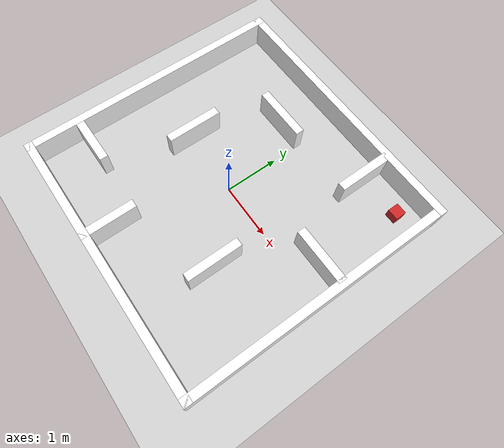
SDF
<?xml version="1.0"?>
<sdf version="1.6">
  <world name="default">

    <include>
      <uri>model://ground_plane</uri>
    </include>

    <include>
      <uri>model://sun</uri>
    </include>

    <scene>
      <shadows>false</shadows>
    </scene>

    <gui fullscreen='0'>
      <camera name='user_camera'>
        <pose frame=''>0.319654 -0.235002 9.29441 0 1.5138 0.009599</pose>
        <view_controller>orbit</view_controller>
        <projection_type>perspective</projection_type>
      </camera>
    </gui>

    <physics type="ode">
  <real_time_update_rate>500.0</real_time_update_rate>
  <max_step_size>0.002</max_step_size>
  <real_time_factor>0.7</real_time_factor>
  <ode>
    <solver>
      <type>quick</type>
      <iters>50</iters>
      <precon_iters>0</precon_iters>
      <sor>1.3</sor>
      <use_dynamic_moi_rescaling>0</use_dynamic_moi_rescaling>
    </solver>
    <constraints>
      <cfm>0.0001</cfm>
      <erp>0.2</erp>
      <contact_max_correcting_vel>100.0</contact_max_correcting_vel>
      <contact_surface_layer>0.001</contact_surface_layer>
    </constraints>
  </ode>
</physics>

    <model name="turtlebot3_dqn_world">
      <static>1</static>
      <include>
        <uri>model://turtlebot3_dqn_world</uri>
      </include>
    </model>

    <include>
      <pose>0 0 0 0 0 0</pose>
      <uri>model://turtlebot3_dqn_world/inner_walls</uri>
    </include>

   <plugin name="gazebo_ros_state" filename="libgazebo_ros_state.so">
      <ros>
        <namespace>/gazebo</namespace>
        <!-- No need to remap if you want the default topic name -->
      </ros>
      <update_rate>10.0</update_rate>
    </plugin>

    <model name='goal_cube'>
  <pose>2.0 2.0 0.1 0 0 0</pose>
  <link name='link'>
    <visual name='visual'>
      <geometry>
        <box><size>0.2 0.2 0.2</size></box>
      </geometry>
      <material>
        <script>
          <uri>file://media/materials/scripts/gazebo.material</uri>
          <name>Gazebo/Red</name>
        </script>
      </material>
    </visual>
  </link>
  <static>true</static> <!-- Makes the cube immovable -->
</model>
  </world>
</sdf>

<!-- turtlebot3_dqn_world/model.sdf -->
<sdf version='1.8'>
  <model name='turtlebot3_square'>
    <pose>0 0 0 0 0 0</pose>
    <static>true</static>

    <link name='Wall_1'>
      <pose>2.425 0 0.25 0 0 1.5708</pose>
      <collision name='Wall_1_Collision'>
        <geometry>
          <box>
            <size>5 0.15 0.5</size>
          </box>
        </geometry>
      </collision>
      <visual name='Wall_1_Visual'>
        <pose>0 0 0 0 0 0</pose>
        <geometry>
          <box>
            <size>5 0.15 0.5</size>
          </box>
        </geometry>
        <material>
          <pbr>
            <metal>
              <albedo_map>textures/wood.png</albedo_map>
            </metal>
          </pbr>
          <ambient>1 1 1 1</ambient>
          <diffuse>1 1 1 1</diffuse>
          <specular>0.2 0.2 0.2 1</specular>
          <emissive>0 0 0 1</emissive>
        </material>
      </visual>
    </link>

    <link name='Wall_2'>
      <pose>0 2.425 0.25 0 0 0</pose>
      <collision name='Wall_2_Collision'>
        <geometry>
          <box>
            <size>5 0.15 0.5</size>
          </box>
        </geometry>
      </collision>
      <visual name='Wall_2_Visual'>
        <pose>0 0 0 0 0 0</pose>
        <geometry>
          <box>
            <size>5 0.15 0.5</size>
          </box>
        </geometry>
        <material>
          <pbr>
            <metal>
              <albedo_map>textures/wood.png</albedo_map>
            </metal>
          </pbr>
          <ambient>1 1 1 1</ambient>
          <diffuse>1 1 1 1</diffuse>
          <specular>0.2 0.2 0.2 1</specular>
          <emissive>0 0 0 1</emissive>
        </material>
      </visual>
    </link>

    <link name='Wall_3'>
      <pose>-2.425 0 0.25 0 0 1.5708</pose>
      <collision name='Wall_3_Collision'>
        <geometry>
          <box>
            <size>5 0.15 0.5</size>
          </box>
        </geometry>
      </collision>
      <visual name='Wall_3_Visual'>
        <pose>0 0 0 0 0 0</pose>
        <geometry>
          <box>
            <size>5 0.15 0.5</size>
          </box>
        </geometry>
        <material>
          <pbr>
            <metal>
              <albedo_map>textures/wood.png</albedo_map>
            </metal>
          </pbr>
          <ambient>1 1 1 1</ambient>
          <diffuse>1 1 1 1</diffuse>
          <specular>0.2 0.2 0.2 1</specular>
          <emissive>0 0 0 1</emissive>
        </material>
      </visual>
    </link>

    <link name='Wall_4'>
      <pose>0 -2.425 0.25 0 0 0</pose>
      <collision name='Wall_4_Collision'>
        <geometry>
          <box>
            <size>5 0.15 0.5</size>
          </box>
        </geometry>
      </collision>
      <visual name='Wall_4_Visual'>
        <pose>0 0 0 0 0 0</pose>
        <geometry>
          <box>
            <size>5 0.15 0.5</size>
          </box>
        </geometry>
        <material>
          <pbr>
            <metal>
              <albedo_map>textures/wood.png</albedo_map>
            </metal>
          </pbr>
          <ambient>1 1 1 1</ambient>
          <diffuse>1 1 1 1</diffuse>
          <specular>0.2 0.2 0.2 1</specular>
          <emissive>0 0 0 1</emissive>
        </material>
      </visual>
    </link>

  </model>
</sdf>

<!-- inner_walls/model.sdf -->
<sdf version='1.8'>
  <model name='inner_walls'>
    <pose>0 0 0 0 0 0</pose>
    <static>true</static>
    <link name='inner_wall_1'>
      <pose>-2.0 -1.5 0.25 0 0 0</pose>
      <collision name='inner_wall_1_collision'>
        <geometry>
          <box>
            <size>1 0.15 0.5</size>
          </box>
        </geometry>
      </collision>
      <visual name='inner_wall_visual'>
        <geometry>
          <box>
            <size>1 0.15 0.5</size>
          </box>
        </geometry>
        <material>
          <pbr>
            <metal>
              <albedo_map>textures/wood.png</albedo_map>
            </metal>
          </pbr>
          <ambient>1 1 1 1</ambient>
          <diffuse>1 1 1 1</diffuse>
          <specular>0.2 0.2 0.2 1</specular>
          <emissive>0 0 0 1</emissive>
        </material>
      </visual>
    </link>

    <link name='inner_wall_2'>
      <pose>-0.5 -2.0 0.25 0 0 -1.5708</pose>
      <collision name='inner_wall_2_collision'>
        <geometry>
          <box>
            <size>1 0.15 0.5</size>
          </box>
        </geometry>
      </collision>
      <visual name='inner_wall_2_visual'>
        <geometry>
          <box>
            <size>1 0.15 0.5</size>
          </box>
        </geometry>
        <material>
          <pbr>
            <metal>
              <albedo_map>textures/wood.png</albedo_map>
            </metal>
          </pbr>
          <ambient>1 1 1 1</ambient>
          <diffuse>1 1 1 1</diffuse>
          <specular>0.2 0.2 0.2 1</specular>
          <emissive>0 0 0 1</emissive>
        </material>
      </visual>
    </link>

    <link name='inner_wall_3'>
      <pose>1.0 -1.0 0.25 0 0 1.5708</pose>
      <collision name='inner_wall_3_collision'>
        <geometry>
          <box>
            <size>1 0.15 0.5</size>
          </box>
        </geometry>
      </collision>
      <visual name='inner_wall_3_visual'>
        <geometry>
          <box>
            <size>1 0.15 0.5</size>
          </box>
        </geometry>
        <material>
          <pbr>
            <metal>
              <albedo_map>textures/wood.png</albedo_map>
            </metal>
          </pbr>
          <ambient>1 1 1 1</ambient>
          <diffuse>1 1 1 1</diffuse>
          <specular>0.2 0.2 0.2 1</specular>
          <emissive>0 0 0 1</emissive>
        </material>
      </visual>
    </link>

    <link name='inner_wall_4'>
      <pose>1.2 1.9 0.25 0 0 -1.5708</pose>
      <collision name='inner_wall_4_collision'>
        <geometry>
          <box>
            <size>1 0.15 0.5</size>
          </box>
        </geometry>
      </collision>
      <visual name='inner_wall_4_visual'>
        <geometry>
          <box>
            <size>1 0.15 0.5</size>
          </box>
        </geometry>
        <material>
          <pbr>
            <metal>
              <albedo_map>textures/wood.png</albedo_map>
            </metal>
          </pbr>
          <ambient>1 1 1 1</ambient>
          <diffuse>1 1 1 1</diffuse>
          <specular>0.2 0.2 0.2 1</specular>
          <emissive>0 0 0 1</emissive>
        </material>
      </visual>
    </link>

    <link name='inner_wall_5'>
      <pose>1.9 0.4 0.25 0 0 0</pose>
      <collision name='inner_wall_5_collision'>
        <geometry>
          <box>
            <size>1 0.15 0.5</size>
          </box>
        </geometry>
      </collision>
      <visual name='inner_wall_5_visual'>
        <geometry>
          <box>
            <size>1 0.15 0.5</size>
          </box>
        </geometry>
        <material>
          <pbr>
            <metal>
              <albedo_map>textures/wood.png</albedo_map>
            </metal>
          </pbr>
          <ambient>1 1 1 1</ambient>
          <diffuse>1 1 1 1</diffuse>
          <specular>0.2 0.2 0.2 1</specular>
          <emissive>0 0 0 1</emissive>
        </material>
      </visual>
    </link>

    <link name='inner_wall_6'>
      <pose>-0.5 1.5 0.25 0 0 0</pose>
      <collision name='inner_wall_6_collision'>
        <geometry>
          <box>
            <size>1 0.15 0.5</size>
          </box>
        </geometry>
      </collision>
      <visual name='inner_wall_6_visual'>
        <geometry>
          <box>
            <size>1 0.15 0.5</size>
          </box>
        </geometry>
        <material>
          <pbr>
            <metal>
              <albedo_map>textures/wood.png</albedo_map>
            </metal>
          </pbr>
          <ambient>1 1 1 1</ambient>
          <diffuse>1 1 1 1</diffuse>
          <specular>0.2 0.2 0.2 1</specular>
          <emissive>0 0 0 1</emissive>
        </material>
      </visual>
    </link>

    <link name='inner_wall_7'>
      <pose>-1.2 0.092 0.25 0 0 -1.5708</pose>
      <collision name='inner_wall_7_collision'>
        <geometry>
          <box>
            <size>1 0.15 0.5</size>
          </box>
        </geometry>
      </collision>
      <visual name='inner_wall_7_visual'>
        <geometry>
          <box>
            <size>1 0.15 0.5</size>
          </box>
        </geometry>
        <material>
          <pbr>
            <metal>
              <albedo_map>textures/wood.png</albedo_map>
            </metal>
          </pbr>
          <ambient>1 1 1 1</ambient>
          <diffuse>1 1 1 1</diffuse>
          <specular>0.2 0.2 0.2 1</specular>
          <emissive>0 0 0 1</emissive>
        </material>
      </visual>
    </link>

  </model>
</sdf>
